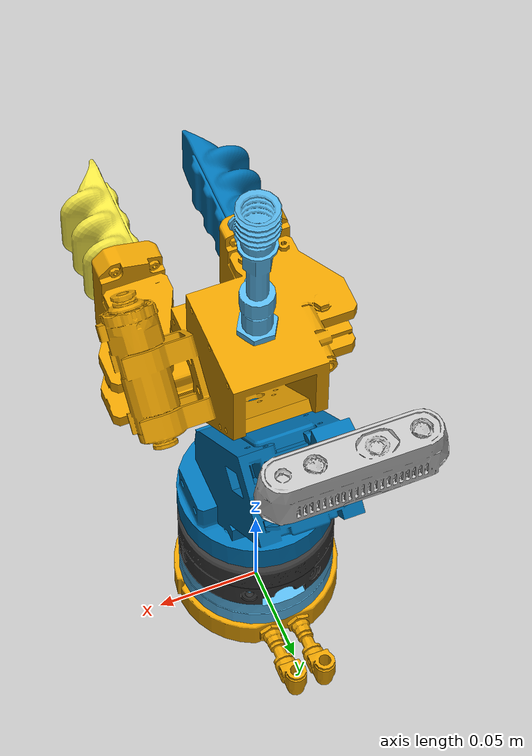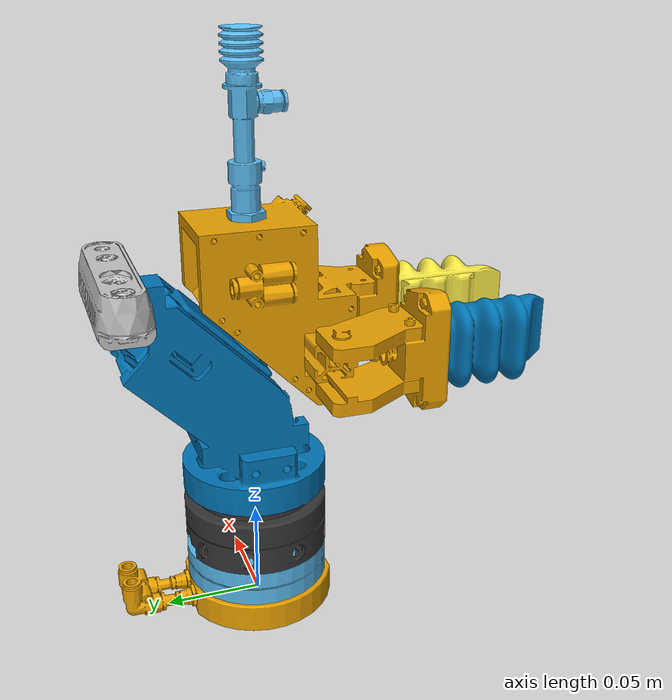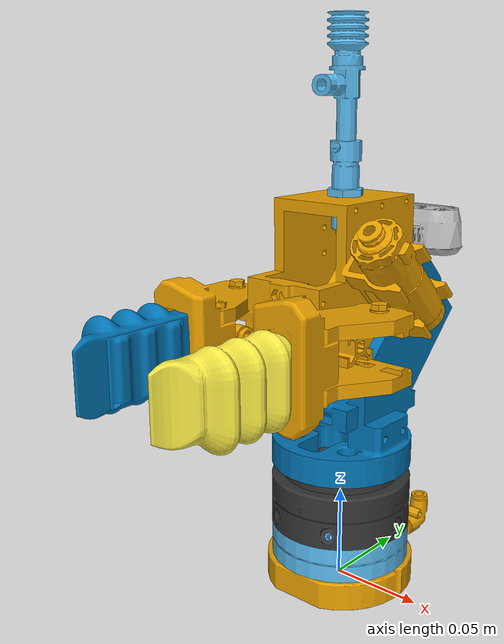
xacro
<?xml version="1.0"?>
<robot xmlns:xacro="http://ros.org/wiki/xacro" name="twintool">

<xacro:include filename="$(find motoman_description)/urdf/twintool_moveit_grasp_macro_20200831.urdf.xacro"/>
</robot>

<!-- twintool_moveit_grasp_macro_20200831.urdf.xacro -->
<robot xmlns:xacro="http://ros.org/wiki/xacro" name="twintool">

    <link name="00_manifold">
		<visual>
			<origin rpy="${-pi/2} ${-pi/2} ${pi/2}" xyz="0 0 0" />
			<geometry>
				<mesh filename="package://motoman_description/meshes/twintool/20200831/00_Manifold_20200831.stl" scale="0.001 0.001 0.001"/>
			</geometry>
		</visual>
		<collision>
			<origin rpy="${-pi/2} ${-pi/2} ${pi/2}" xyz="0 0 0" />
			<geometry>
				<mesh filename="package://motoman_description/meshes/twintool/20200831/00_Manifold_20200831.stl" scale="0.001 0.001 0.001"/>
			</geometry>
		</collision>
	</link>
	<joint name="manifold_to_robotiq-fts-300_adapter" type="fixed">
		<parent link="00_manifold" />
		<child link="01_robotiq-fts-300_adapter" />
		<origin xyz="0 0 0.015" />
	</joint>
	<link name="01_robotiq-fts-300_adapter">
		<visual>
			<origin rpy="0.0 0 ${pi}" xyz="0 0 0" />
			<geometry>
				<mesh filename="package://motoman_description/meshes/twintool/20200831/02_ROBOTIQ_FTS-300_ADAPTER.stl"  scale="0.001 0.001 0.001"/>
			</geometry>
		</visual>
		<collision>
			<origin rpy="0.0 0 ${pi}" xyz="0 0 0" />
			<geometry>
				<mesh filename="package://motoman_description/meshes/twintool/20200831/02_ROBOTIQ_FTS-300_ADAPTER.stl"  scale="0.001 0.001 0.001"/>
			</geometry>
		</collision>
	</link>
    <xacro:macro name="robotiq_ft300" params="parent prefix *origin">
        <!-- mount the fts to the robot -->
        <joint name="${prefix}ft300_fix" type="fixed">
            <xacro:insert_block name="origin" />
            <parent link="${parent}" />
            <child link="${prefix}ft300_sensor" />
        </joint>
        <!-- Link representing the FT300 force-torque sensor -->
        <link name="${prefix}ft300_sensor">
            <inertial>
                <origin xyz="0 0 ${-17 / 1000}" rpy="0 0 0"/>
                <mass value="0.300"/>
                <inertia ixx="${262 / 1000000}" ixy="0" ixz="${1 / 1000000}" iyy="${265 / 1000000}" iyx="0" iyz="${1 / 1000000}" izz="${219 / 1000000}" izx="${-1 / 1000000}" izy="${1 / 1000000}"/>
            </inertial>
            <visual>
                <origin xyz="0 0 0" rpy="0 0 0" />
                <geometry>
                    <mesh filename="package://robotiq_ft_sensor/meshes/visual/robotiq_ft300.STL"/>
                </geometry>
                <material name="Robotiq-Black">
                    <color rgba="0.2 0.2 0.2 1.0"/>
                </material>
            </visual>
            <collision>
                <origin xyz="0 0 0" rpy="0 0 0" />
                <geometry>
                    <mesh filename="package://robotiq_ft_sensor/meshes/collision/robotiq_ft300.STL"/>
                </geometry>
            </collision>
        </link>
        <joint name="${prefix}measurment_joint" type="fixed">
            <origin xyz="0 0 0" rpy="0 ${pi} ${-pi/2}" />
            <parent link="${prefix}ft300_sensor" />
            <child link="${prefix}robotiq_ft_frame_id" />
        </joint>

        <link name="${prefix}robotiq_ft_frame_id"/>
    </xacro:macro>
    <xacro:robotiq_ft300 parent="01_robotiq-fts-300_adapter" prefix="">
		<origin xyz="0 0 0.0535" rpy="0 ${pi} ${pi}"/>
	</xacro:robotiq_ft300>

    <joint name="robotiq-fts-300_to_mee-base" type="fixed">
		<parent link="ft300_sensor" />
		<child link="03.5_mee-base" />
		<origin xyz="0 0 0" rpy="0 ${pi} ${pi}"/>
	</joint>
	<link name="03.5_mee-base">
		<visual>
			<origin rpy="${-pi/2} ${-pi/2} ${pi/2}" xyz="0 0 0" />
			<geometry>
				<mesh filename="package://motoman_description/meshes/twintool/20200831/04_MX106-Assem_20200831.stl" scale="0.001 0.001 0.001"/>
			</geometry>
		</visual>
		<collision>
			<origin rpy="${-pi/2} ${-pi/2} ${pi/2}" xyz="0 0 0" />
			<geometry>
				<mesh filename="package://motoman_description/meshes/twintool/20200831/04_MX106-Assem_20200831.stl" scale="0.001 0.001 0.001"/>
			</geometry>
		</collision>
	</link>
	<joint name="mee-base_to_rs-d35" type="fixed">
		<parent link="03.5_mee-base" />
		<child link="05_rs-d435" />
		<origin xyz="${-17.50000094/1000} ${52/1000+0.015} ${(53.5+77)/1000}" />
	</joint>
	<link name="05_rs-d435">
		<visual>
			<origin rpy="0 0 0" xyz="0 0 0" />
			<geometry>
				<mesh filename="package://realsense2_description/meshes/d435.dae"/>
			</geometry>
		</visual>
		<collision>
			<origin rpy="0 0 0" xyz="0 0 0" />
			<geometry>
				<mesh filename="package://realsense2_description/meshes/d435.dae"/>
			</geometry>
		</collision>
	</link>
    <joint name="twintool_joint1" type="revolute">
		<axis xyz="0 0 1" />
		<limit effort="1000.0" lower="0.0" upper="3.15" velocity="0.5" />
		<parent link="03.5_mee-base" />
		<child link="dual_gripper_mount" />
        <origin xyz="0 0 ${77.50003396/1000}" rpy="${pi/4} 0 0" />
	</joint>

    <joint name="mee-base_to_imu_lpms-b2" type="fixed">
		<parent link="03.5_mee-base" />
		<child link="imu_lpms-b2_frame_id" />
		<origin xyz="0 0 0.0425" />
	</joint>
    <link name="imu_lpms-b2_frame_id">
    </link>
    <link name="dual_gripper_mount">
    </link>
    <xacro:macro name="dual_gripper" params="parent *origin">
        <joint name="dual_gripper_fix" type="fixed">
            <xacro:insert_block name="origin" />
            <parent link="${parent}" />
            <child link="06_mee-tool-base" />
        </joint>
        <link name="06_mee-tool-base">
            <visual>
                <origin rpy="0 ${-pi/2} 0" xyz="0 0 0" />
                <geometry>
                    <mesh filename="package://motoman_description/meshes/twintool/20200831/06_Tool base-Assem_20200831.stl" scale="0.001 0.001 0.001"/>
                </geometry>
            </visual>
            <collision>
                <origin rpy="0 ${-pi/2} 0" xyz="0 0 0" />
                <geometry>
                    <mesh filename="package://motoman_description/meshes/twintool/20200831/06_Tool base-Assem_20200831.stl" scale="0.001 0.001 0.001"/>
                </geometry>
            </collision>
        </link>
        <joint name="mee-tool-base_to_vacuum-pad" type="fixed">
            <parent link="06_mee-tool-base" />
            <child link="07-0_vacuum-pad" />
            <origin xyz="0 0 0" />
        </joint>
        <link name="07-0_vacuum-pad">
            <visual>
                <origin rpy="0 ${-pi/2} ${pi/2}" xyz="0 0 ${0.065}" />
                <geometry>
                    <mesh filename="package://motoman_description/meshes/twintool/20200831/10_Vacuum_20200831.stl" scale="0.001 0.001 0.001"/>
                </geometry>
            </visual>
            <collision>
                <origin rpy="0 ${-pi/2} ${pi/2}" xyz="0 0 ${0.065}" />
                <geometry>
                    <mesh filename="package://motoman_description/meshes/twintool/20200831/10_Vacuum_20200831.stl" scale="0.001 0.001 0.001"/>
                </geometry>
            </collision>
        </link>

        <link name="tool0_center_point"/>
        <joint name="tool0_center_point_joint" type="fixed">
            <parent link="06_mee-tool-base" />
            <child link="tool0_center_point" />
            <origin xyz="0 0 ${0.152}" rpy="0 0 ${pi}"/>
        </joint>
        <joint name="twintool_joint2_1" type="revolute">
            <axis xyz="-1 0 0" />
            <limit effort="1000.0" lower="0" upper="0.6" velocity="0.5" />
            <parent link="06_mee-tool-base" />
            <child link="07-1-1_soft-robotics-gripper" />
            <origin xyz="${0.0225} ${-0.08603427086} 0" rpy="0 ${-pi/2} 0"/>
        </joint>
        <joint name="twintool_joint2_2" type="revolute">
            <axis xyz="-1 0 0" />
            <limit effort="1000.0" lower="-0.6" upper="0" velocity="0.5" />
            <parent link="06_mee-tool-base" />
            <child link="07-1-2_soft-robotics-gripper" />
            <origin xyz="${-0.0225} ${-0.08603427086} 0" rpy="0 ${-pi/2} 0"/>
            <mimic joint="twintool_joint2_1" multiplier="-1" offset="0" />
        </joint>

        <xacro:arg name="with_tongs" default="false" />
        <xacro:if value="$(arg with_tongs)">
            <link name="07-1-1_soft-robotics-gripper">
                <visual>
                    <origin rpy="0 0 0" xyz="0 0 0" />
                    <geometry>
                        <mesh filename="package://motoman_description/meshes/twintool/20200831/08-1.5_SRDK-R-wTong_20200831.stl" scale="0.001 0.001 0.001"/>
                    </geometry>
                </visual>
                <collision>
                    <origin rpy="0 0 0" xyz="0 0 0" />
                    <geometry>
                        <mesh filename="package://motoman_description/meshes/twintool/20200831/08-1.5_SRDK-R-wTong_20200831.stl" scale="0.001 0.001 0.001"/>
                    </geometry>
                </collision>
            </link>
            <link name="07-1-2_soft-robotics-gripper">
                <visual>
                    <origin rpy="0 0 0" xyz="0 0 0" />
                    <geometry>
                        <mesh filename="package://motoman_description/meshes/twintool/20200831/08-2.5_SRDK-L-wTong_20200831.stl" scale="0.001 0.001 0.001"/>
                    </geometry>
                </visual>
                <collision>
                    <origin rpy="0 0 0" xyz="0 0 0" />
                    <geometry>
                        <mesh filename="package://motoman_description/meshes/twintool/20200831/08-2.5_SRDK-L-wTong_20200831.stl" scale="0.001 0.001 0.001"/>
                    </geometry>
                </collision>
            </link>

        </xacro:if>

        <xacro:unless value="$(arg with_tongs)">
            <link name="07-1-1_soft-robotics-gripper">
                <visual>
                    <origin rpy="0 0 0" xyz="0 0 0" />
                    <geometry>
                        <mesh filename="package://motoman_description/meshes/twintool/20200831/08-1_SRDK-R_20200831.stl" scale="0.001 0.001 0.001"/>
                    </geometry>
                </visual>
                <collision>
                    <origin rpy="0 0 0" xyz="0 -${(0.065+0.06)/2} -0.01" />
                    <geometry>
                        <box size="0.035 ${0.065+0.06} 0.025"/>
                    </geometry>
                </collision>
            </link>
            <link name="07-1-2_soft-robotics-gripper">
                <visual>
                    <origin rpy="0 0 0" xyz="0 0 0" />
                    <geometry>
                        <mesh filename="package://motoman_description/meshes/twintool/20200831/08-2_SRDK_20200831.stl" scale="0.001 0.001 0.001"/>
                    </geometry>
                </visual>
                <collision>
                    <origin rpy="0 0 0" xyz="0 -${(0.065+0.06)/2} 0.01" />
                    <geometry>
                        <box size="0.035 ${0.065+0.06} 0.025"/>
                    </geometry>
                </collision>
            </link>
        </xacro:unless>

        <link name="tool1_center_point"/>
        <joint name="tool1_center_point_joint" type="fixed">
            <parent link="06_mee-tool-base" />
            <child link="tool1_center_point" />
            <origin xyz="0 ${-0.08603427086-0.065} 0" rpy="${pi/2} 0  0"/>
        </joint>
    </xacro:macro>
    <xacro:dual_gripper parent="dual_gripper_mount">
		<origin xyz="0 0 0" rpy="${-pi/4} ${pi*0} 0"/>
        <!-- p = 3.1415 for two finger gripper and p = 0 for vacuum pad--> <!--FOR NOW -->
	</xacro:dual_gripper>
</robot>
